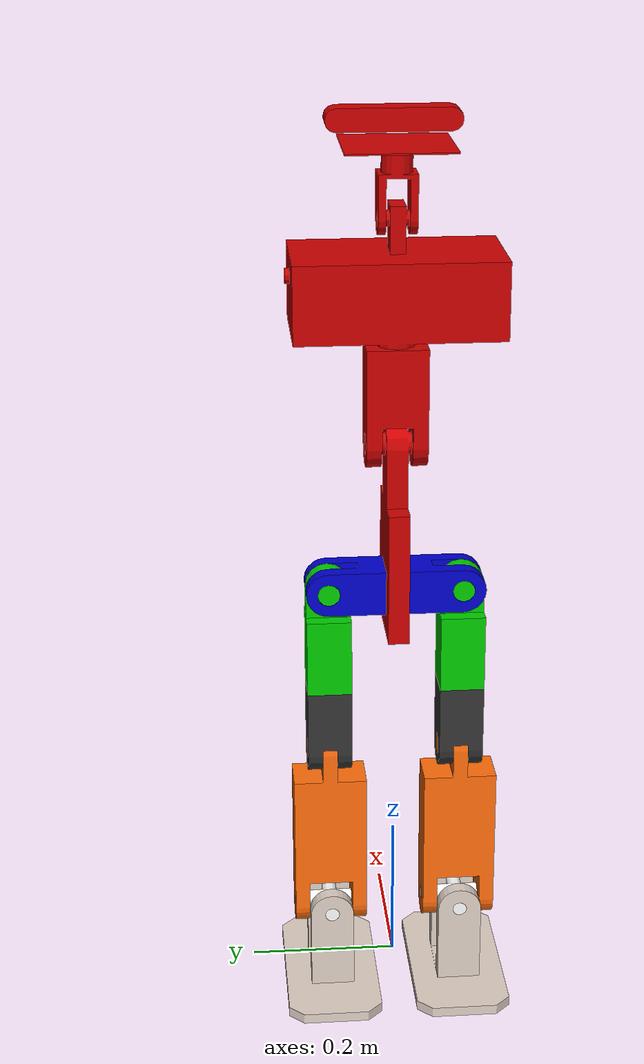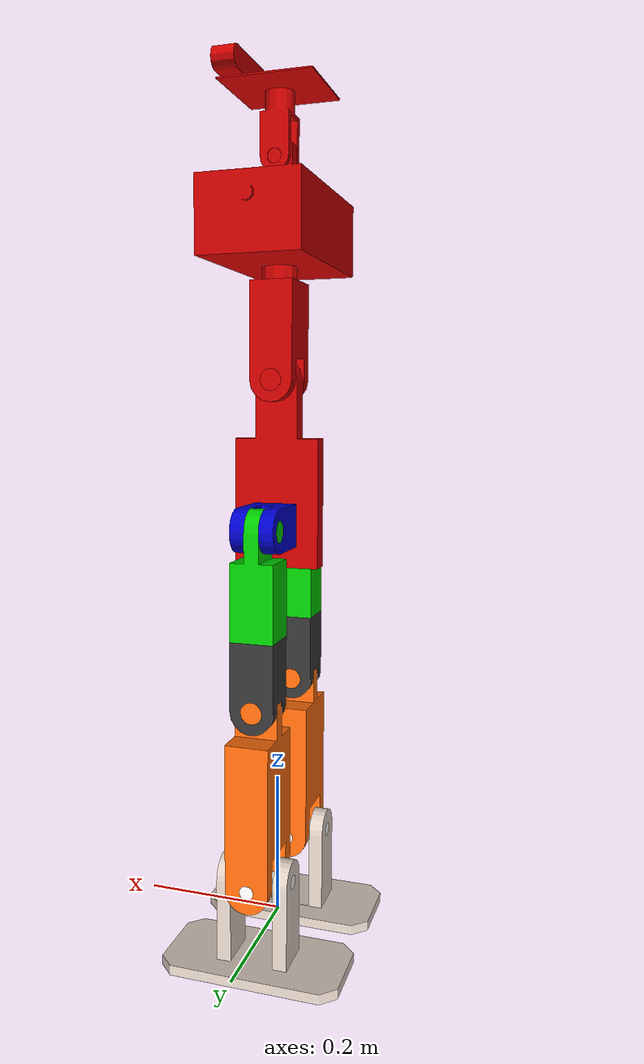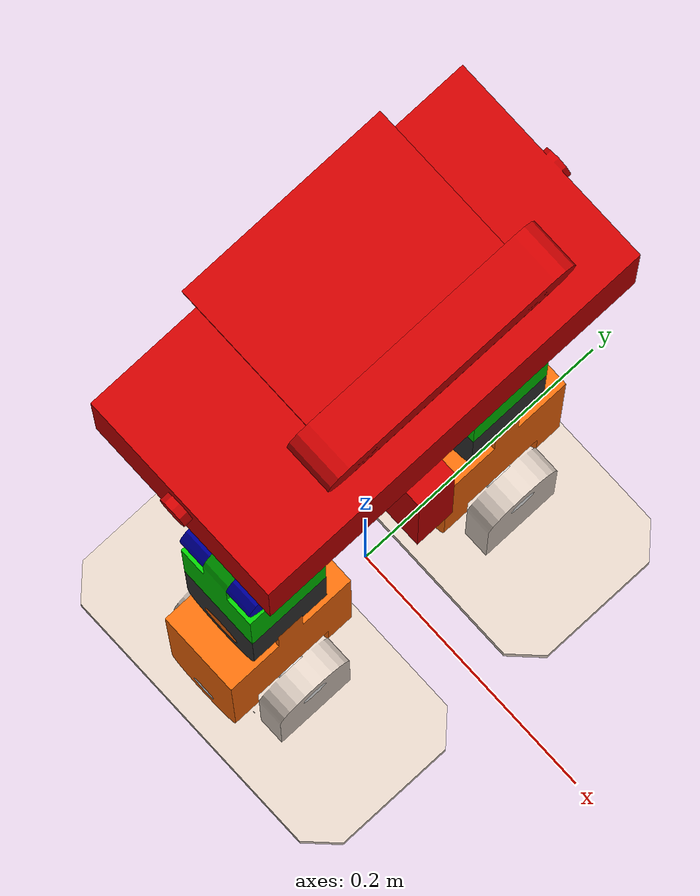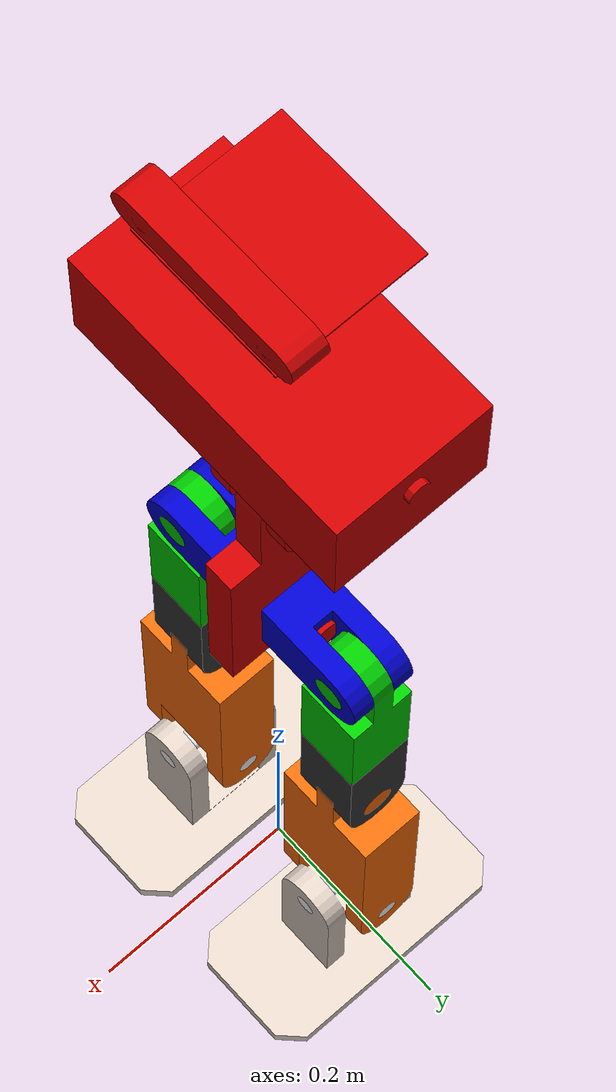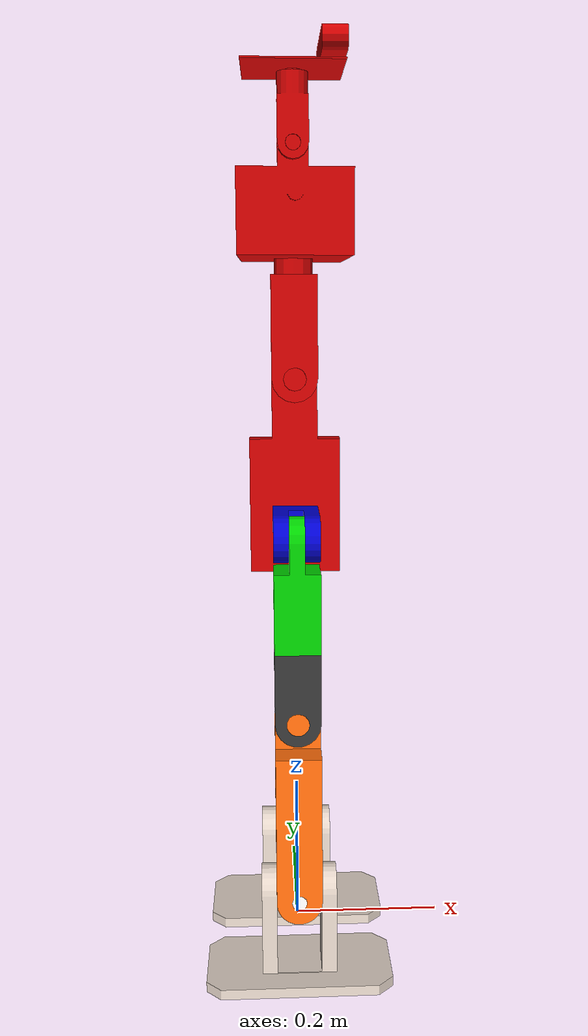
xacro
<?xml version="1.0"?>

<robot name="alice_robot" xmlns:xacro="http://www.ros.org/wiki/xacro">

  <xacro:property name="pi" value="3.141592654" />
   <!-- Import all Gazebo-customization elements, including Gazebo colors -->
  <xacro:include filename="$(find alice_description)/urdf/soccer_gazebo.gazebo" />
  <xacro:include filename="$(find alice_description)/urdf/materials.xacro" />

  <!-- Used for fixing robot -->

  <link name="base">
  </link>

  <joint name="base_fixed" type="fixed">
    <origin xyz="0 0 0.57" rpy="0 0 0"/>
    <parent link="base"/>
    <child link="pelvis"/>
  </joint>

  <!-- pelvis -->

  <link name="pelvis">
    <collision>
      <origin xyz="0 0 0" rpy="0 0 0"/>
      <geometry>
        <box size="0.01 0.01 0.01" />
      </geometry>
    </collision>

    <visual>
        <origin xyz="0 0 0" rpy="0 0 0"/>
        <geometry>
          <mesh filename="package://alice_description/meshes/prt_robot_pelvis_main.stl" scale="0.001 0.001 0.001"/>
        </geometry>
        <material name="red"/>
    </visual>

    <inertial>
      <origin xyz="0 0 0" rpy="0 0 0"/>
      <mass value="1"/>
      <inertia ixx="1.0" ixy="0.0" ixz="0.0" iyy="1.0" iyz="0.0" izz="1.0" />
    </inertial>
  </link>

  <joint name="imu_fixed" type="fixed">
    <parent link="pelvis"/>
    <child link="imu_link"/>
    <origin xyz="0.0 0.0 0" rpy="0 0 0"/>
  </joint>

  <link name="imu_link">
    <inertial>
      <origin xyz="0 0 0" rpy="0 0 0"/>
      <mass value="1"/>
      <inertia ixx="1.0" ixy="0.0" ixz="0.0" iyy="1.0" iyz="0.0" izz="1.0" />
    </inertial>
  </link>

  <!-- chest -->
  <joint name="waist_pitch" type="revolute">
    <parent link="pelvis"/>
    <child link="waist_pitch_link"/>
    <origin xyz="0 0 0.20" rpy="0 0 0"/>
    <axis xyz="0 -1 0"/>
    <limit velocity="6.5" effort="1000" lower="${-pi/2}" upper="${pi}" />
    <dynamics damping = "0.7"/>
  </joint>

  <transmission name="waist_pitch_tran">
     <type>transmission_interface/SimpleTransmission</type>
     <joint name="waist_pitch">
       <hardwareInterface>EffortJointInterface</hardwareInterface>
     </joint>
     <actuator name="waist_pitch_motor">
       <hardwareInterface>EffortJointInterface</hardwareInterface>
       <mechanicalReduction>1</mechanicalReduction>
     </actuator>
  </transmission>

  <link name="waist_pitch_link">
    <collision>
      <origin xyz="0 0 0" rpy="0 0 0"/>
      <geometry>
        <box size="0.01 0.01 0.01" />
      </geometry>
    </collision>

    <visual>
        <origin xyz="0 0 0" rpy="0 0 0"/>
        <geometry>
          <mesh filename="package://alice_description/meshes/prt_robot_chest_2.stl" scale="0.001 0.001 0.001"/>
        </geometry>
        <material name="red"/>
    </visual>

    <inertial>
      <origin xyz="0 0 0" rpy="0 0 0"/>
      <mass value="1"/>
      <inertia ixx="1.0" ixy="0.0" ixz="0.0" iyy="1.0" iyz="0.0" izz="1.0" />
    </inertial>
  </link>

  <joint name="waist_yaw" type="revolute">
    <parent link="waist_pitch_link"/>
    <child link="waist_yaw_link"/>
    <origin xyz="0 0 0.144" rpy="0 0 0"/>
    <axis xyz="0 0 -1"/>
    <limit velocity="6.5" effort="1000" lower="${-pi/2}" upper="${pi}" />
    <dynamics damping = "0.7"/>
   </joint>

  <transmission name="waist_yaw_tran">
     <type>transmission_interface/SimpleTransmission</type>
     <joint name="waist_yaw">
       <hardwareInterface>EffortJointInterface</hardwareInterface>
     </joint>
     <actuator name="waist_yaw_motor">
       <hardwareInterface>EffortJointInterface</hardwareInterface>
       <mechanicalReduction>1</mechanicalReduction>
     </actuator>
  </transmission>

  <link name="waist_yaw_link">
    <collision>
      <origin xyz="0 0 0" rpy="0 0 0"/>
      <geometry>
        <box size="0.01 0.01 0.01" />
      </geometry>
    </collision>

    <visual>
        <origin xyz="0 0 0" rpy="0 0 0"/>
        <geometry>
          <mesh filename="package://alice_description/meshes/prt_robot_chest_3.stl" scale="0.001 0.001 0.001"/>
        </geometry>
        <material name="red"/>
    </visual>

    <inertial>
      <origin xyz="0 0 0" rpy="0 0 0"/>
      <mass value="1"/>
      <inertia ixx="1.0" ixy="0.0" ixz="0.0" iyy="1.0" iyz="0.0" izz="1.0" />
    </inertial>
  </link>

<!-- HEAD -->

 <joint name="head_pitch" type="revolute">
    <parent link="waist_yaw_link"/>
    <child link="head_pitch_link"/>
    <origin xyz="0 0 0.151" rpy="0 0 0"/>
    <axis xyz="0 1 0"/>
    <limit velocity="6.5" effort="1000" lower="${-pi/2}" upper="${pi}" />
    <dynamics damping = "0.7"/>
   </joint>

  <transmission name="head_pitch_tran">
     <type>transmission_interface/SimpleTransmission</type>
     <joint name="head_pitch">
       <hardwareInterface>EffortJointInterface</hardwareInterface>
     </joint>
     <actuator name="head_pitch_motor">
       <hardwareInterface>EffortJointInterface</hardwareInterface>
       <mechanicalReduction>1</mechanicalReduction>
     </actuator>
  </transmission>

  <link name="head_pitch_link">
    <collision>
      <origin xyz="0 0 0" rpy="0 0 0"/>
      <geometry>
        <box size="0.01 0.01 0.01" />
      </geometry>
    </collision>

    <visual>
        <origin xyz="0 0 0" rpy="0 0 0"/>
        <geometry>
          <mesh filename="package://alice_description/meshes/prt_robot_head1.stl" scale="0.001 0.001 0.001"/>
        </geometry>
        <material name="red"/>
    </visual>

    <inertial>
      <origin xyz="0 0 0" rpy="0 0 0"/>
      <mass value="1"/>
      <inertia ixx="1.0" ixy="0.0" ixz="0.0" iyy="1.0" iyz="0.0" izz="1.0" />
    </inertial>
  </link>

 <joint name="head_yaw" type="revolute">
    <parent link="head_pitch_link"/>
    <child link="head_yaw_link"/>
    <origin xyz="0 0 0.0875" rpy="0 0 0"/>
    <axis xyz="0 0 1"/>
    <limit velocity="6.5" effort="1000" lower="${-pi/2}" upper="${pi}" />
    <dynamics damping = "0.7"/>
   </joint>

  <transmission name="head_yaw_tran">
     <type>transmission_interface/SimpleTransmission</type>
     <joint name="head_yaw">
       <hardwareInterface>EffortJointInterface</hardwareInterface>
     </joint>
     <actuator name="head_yaw_motor">
       <hardwareInterface>EffortJointInterface</hardwareInterface>
       <mechanicalReduction>1</mechanicalReduction>
     </actuator>
  </transmission>

  <link name="head_yaw_link">
    <collision>
      <origin xyz="0 0 0" rpy="0 0 0"/>
      <geometry>
        <box size="0.01 0.01 0.01" />
      </geometry>
    </collision>

    <visual>
        <origin xyz="0 0 0" rpy="0 0 0"/>
        <geometry>
          <mesh filename="package://alice_description/meshes/prt_robot_head2.stl" scale="0.001 0.001 0.001"/>
        </geometry>
        <material name="red"/>
    </visual>

    <inertial>
      <origin xyz="0 0 0" rpy="0 0 0"/>
      <mass value="1"/>
      <inertia ixx="1.0" ixy="0.0" ixz="0.0" iyy="1.0" iyz="0.0" izz="1.0" />
    </inertial>
  </link>

<joint name="camera_fixed" type="fixed">
    <parent link="head_yaw_link"/>
    <child link="camera_link"/>
    <origin xyz="0.05 0 0.027" rpy="0 0 0"/>
    <axis xyz="0 0 1"/>
    <limit velocity="6.5" effort="1000" lower="${-pi/2}" upper="${pi}" />
    <dynamics damping = "0.7"/>
 </joint>

  <link name="camera_link">
    <collision>
      <origin xyz="0 0 0" rpy="0 0 0"/>
      <geometry>
        <box size="0.01 0.01 0.01" />
      </geometry>
    </collision>

    <visual>
        <origin xyz="0 0 0" rpy="0 0 0"/>
        <geometry>
          <mesh filename="package://alice_description/meshes/prt_zed_camera_simul.stl" scale="0.001 0.001 0.001"/>
        </geometry>
        <material name="red"/>
    </visual>

    <inertial>
      <origin xyz="0 0 0" rpy="0 0 0"/>
      <mass value="1"/>
      <inertia ixx="1.0" ixy="0.0" ixz="0.0" iyy="1.0" iyz="0.0" izz="1.0" />
    </inertial>
  </link>

  <!-- left leg -->
  <joint name="l_hip_pitch" type="revolute">
    <parent link="pelvis"/>
    <child link="l_hip_pitch_link"/>
    <origin xyz="0 0.034 0" rpy="0 0 0"/>
    <axis xyz="0 -1 0"/>
    <limit velocity="6.5" effort="1000" lower="${-pi/2}" upper="${pi/2}" />
    <dynamics damping = "0.7"/>
  </joint>

  <transmission name="l_hip_pitch_tran">
     <type>transmission_interface/SimpleTransmission</type>
     <joint name="l_hip_pitch">
       <hardwareInterface>EffortJointInterface</hardwareInterface>
     </joint>
     <actuator name="l_hip_pitch_motor">
       <hardwareInterface>EffortJointInterface</hardwareInterface>
       <mechanicalReduction>1</mechanicalReduction>
     </actuator>
  </transmission>

  <link name="l_hip_pitch_link">
    <collision>
      <origin xyz="0 0 0" rpy="0 0 0"/>
      <geometry>
        <box size="0.01 0.01 0.01" />
      </geometry>
    </collision>

    <visual>
      <origin xyz="0 0 0" rpy="0 0 0"/>
      <geometry>
        <mesh filename="package://alice_description/meshes/prt_robot_pelvis_left1.stl" scale="0.001 0.001 0.001"/>
      </geometry>
      <material name="blue"/>
    </visual>

    <inertial>
      <origin xyz="0 0 0" rpy="0 0 0"/>
      <mass value="1"/>
      <inertia ixx="1.0" ixy="0.0" ixz="0.0" iyy="1.0" iyz="0.0" izz="1.0" />
    </inertial>
  </link>

  <joint name="l_hip_roll" type="revolute">
    <parent link="l_hip_pitch_link"/>
    <child link="l_hip_roll_link"/>
    <origin xyz="0 0.056 0" rpy="0 0 0"/>
    <axis xyz="-1 0 0"/>
    <limit velocity="6.5" effort="1000" lower="${-pi/2}" upper="${pi}" />
    <dynamics damping = "0.7"/>
  </joint>

  <transmission name="l_hip_roll_tran">
     <type>transmission_interface/SimpleTransmission</type>
     <joint name="l_hip_roll">
       <hardwareInterface>EffortJointInterface</hardwareInterface>
     </joint>
     <actuator name="l_hip_roll_motor">
       <hardwareInterface>EffortJointInterface</hardwareInterface>
       <mechanicalReduction>1</mechanicalReduction>
     </actuator>
  </transmission>

  <link name="l_hip_roll_link">
    <collision>
      <origin xyz="0 0 0" rpy="0 0 0"/>
      <geometry>
        <box size="0.01 0.01 0.01" />
      </geometry>
    </collision>

    <visual>
      <origin xyz="0 0 0" rpy="0 0 0"/>
      <geometry>
        <mesh filename="package://alice_description/meshes/prt_robot_pelvis_left2.stl" scale="0.001 0.001 0.001"/>
      </geometry>
      <material name="green"/>
    </visual>

    <inertial>
      <origin xyz="0 0 0" rpy="0 0 0"/>
      <mass value="1"/>
      <inertia ixx="1.0" ixy="0.0" ixz="0.0" iyy="1.0" iyz="0.0" izz="1.0" />
    </inertial>
  </link>

  <joint name="l_hip_yaw" type="revolute">
    <parent link="l_hip_roll_link"/>
    <child link="l_hip_yaw_link"/>
    <origin xyz="0 0 -0.136" rpy="0 0 0"/>
    <axis xyz="0 0 1"/>
    <limit velocity="6.5" effort="1000" lower="${-pi/2}" upper="${pi/2}" />
    <dynamics damping = "0.7"/>
  </joint>

  <transmission name="l_hip_yaw_tran">
     <type>transmission_interface/SimpleTransmission</type>
     <joint name="l_hip_yaw">
       <hardwareInterface>EffortJointInterface</hardwareInterface>
     </joint>
     <actuator name="l_hip_yaw_motor">
       <hardwareInterface>EffortJointInterface</hardwareInterface>
       <mechanicalReduction>1</mechanicalReduction>
     </actuator>
  </transmission>

  <link name="l_hip_yaw_link">
    <collision>
      <origin xyz="0 0 0" rpy="0 0 0"/>
      <geometry>
        <box size="0.01 0.01 0.01" />
      </geometry>
    </collision>

    <visual>
      <origin xyz="0 0 0" rpy="0 0 0"/>
      <geometry>
        <mesh filename="package://alice_description/meshes/prt_robot_leg_left1.stl" scale="0.001 0.001 0.001"/>
      </geometry>
      <material name="grey"/>
    </visual>

    <inertial>
      <origin xyz="0 0 0" rpy="0 0 0"/>
      <mass value="1"/>
      <inertia ixx="1.0" ixy="0.0" ixz="0.0" iyy="1.0" iyz="0.0" izz="1.0" />
    </inertial>
  </link>

  <joint name="l_knee_pitch" type="revolute">
    <parent link="l_hip_yaw_link"/>
    <child link="l_knee_pitch_link"/>
    <origin xyz="0 0 -0.104" rpy="0 0 0"/>
    <axis xyz="0 -1 0"/>
    <limit velocity="6.5" effort="1000" lower="${-pi}" upper="${pi/2}" />
    <dynamics damping = "0.7"/>
  </joint>

  <transmission name="l_knee_pitch_tran">
     <type>transmission_interface/SimpleTransmission</type>
     <joint name="l_knee_pitch">
       <hardwareInterface>EffortJointInterface</hardwareInterface>
     </joint>
     <actuator name="l_knee_pitch_motor">
       <hardwareInterface>EffortJointInterface</hardwareInterface>
       <mechanicalReduction>1</mechanicalReduction>
     </actuator>
  </transmission>

  <link name="l_knee_pitch_link">
    <collision>
      <origin xyz="0 0 0" rpy="0 0 0"/>
      <geometry>
        <box size="0.01 0.01 0.01" />
      </geometry>
    </collision>

    <visual>
      <origin xyz="0 0 0" rpy="0 0 0"/>
      <geometry>
        <mesh filename="package://alice_description/meshes/prt_robot_leg_left2.stl" scale="0.001 0.001 0.001"/>
      </geometry>
      <material name="orange"/>
    </visual>

    <inertial>
      <origin xyz="0 0 -0.240" rpy="0 0 0"/>
      <mass value="1"/>
      <inertia ixx="1.0" ixy="0.0" ixz="0.0" iyy="1.0" iyz="0.0" izz="1.0" />
    </inertial>
  </link>

  <joint name="l_ankle_pitch" type="revolute">
    <parent link="l_knee_pitch_link"/>
    <child link="l_ankle_pitch_link"/>
    <origin xyz="0 0 -0.240" rpy="0 0 0"/>
    <axis xyz="0 1 0"/>
    <limit velocity="6.5" effort="1000" lower="${-pi/2}" upper="${pi}" />
    <dynamics damping = "0.7"/>
  </joint>

  <transmission name="l_ankle_pitch_tran">
     <type>transmission_interface/SimpleTransmission</type>
     <joint name="l_ankle_pitch">
       <hardwareInterface>EffortJointInterface</hardwareInterface>
     </joint>
     <actuator name="l_ankle_pitch_motor">
       <hardwareInterface>EffortJointInterface</hardwareInterface>
       <mechanicalReduction>1</mechanicalReduction>
     </actuator>
  </transmission>

  <link name="l_ankle_pitch_link">
    <collision>
      <origin xyz="0 0 0" rpy="0 0 0"/>
      <geometry>
        <box size="0.01 0.01 0.01" />
      </geometry>
    </collision>

    <visual>
      <origin xyz="0 0 0" rpy="0 0 0"/>
      <geometry>
        <mesh filename="package://alice_description/meshes/prt_robot_ank_left1.stl" scale="0.001 0.001 0.001"/>
      </geometry>
      <material name="white"/>
    </visual>

    <inertial>
      <origin xyz="0 0 0" rpy="0 0 0"/>
      <mass value="1"/>
      <inertia ixx="1.0" ixy="0.0" ixz="0.0" iyy="1.0" iyz="0.0" izz="1.0" />
    </inertial>
  </link>

  <joint name="l_ankle_roll" type="revolute">
    <parent link="l_ankle_pitch_link"/>
    <child link="l_ankle_roll_link"/>
    <origin xyz="0 0 0" rpy="0 0 0"/>
    <axis xyz="1 0 0"/>
    <limit velocity="6.5" effort="1000" lower="${-pi/2}" upper="${pi/2}" />
    <dynamics damping = "0.7"/>
  </joint>

  <transmission name="l_ankle_roll_tran">
     <type>transmission_interface/SimpleTransmission</type>
     <joint name="l_ankle_roll">
       <hardwareInterface>EffortJointInterface</hardwareInterface>
     </joint>
     <actuator name="l_ankle_roll_motor">
       <hardwareInterface>EffortJointInterface</hardwareInterface>
       <mechanicalReduction>1</mechanicalReduction>
     </actuator>
  </transmission>

  <link name="l_ankle_roll_link">
    <collision>
      <origin xyz="0 0 0" rpy="0 0 0"/>
      <geometry>
        <box size="0.01 0.01 0.01" />
      </geometry>
    </collision>

    <visual>
      <origin xyz="0 0 0" rpy="0 0 0"/>
      <geometry>
        <mesh filename="package://alice_description/meshes/prt_robot_ank_left2.stl" scale="0.001 0.001 0.001"/>
      </geometry>
      <material name="brown"/>
    </visual>

    <inertial>
      <origin xyz="0 0 0" rpy="0 0 0"/>
      <mass value="1"/>
      <inertia ixx="1.0" ixy="0.0" ixz="0.0" iyy="1.0" iyz="0.0" izz="1.0" />
    </inertial>
  </link>

  <joint name="l_last" type="fixed">
    <parent link="l_ankle_roll_link"/>
    <child link="l_foot_link"/>
    <origin xyz="0 0 -0.1245" rpy="0 0 0"/>
  </joint>

  <link name="l_foot_link">
    <collision>
      <origin xyz="0 0 0" rpy="0 0 0"/>
      <geometry>
        <box size="0.25 0.13 0.005" />
      </geometry>
    </collision>

    <inertial>
      <origin xyz="0 0 0" rpy="0 0 0"/>
      <mass value="1"/>
      <inertia ixx="1.0" ixy="0.0" ixz="0.0" iyy="1.0" iyz="0.0" izz="1.0" />
    </inertial>
  </link>

  <!-- right leg -->
  <joint name="r_hip_pitch" type="revolute">
    <parent link="pelvis"/>
    <child link="r_hip_pitch_link"/>
    <origin xyz="0 -0.034 0" rpy="0 0 0"/>
    <axis xyz="0 1 0"/>
    <limit velocity="6.5" effort="1000" lower="${-pi/2}" upper="${pi}" />
    <dynamics damping = "0.7"/>
  </joint>

  <transmission name="r_hip_pitch_tran">
     <type>transmission_interface/SimpleTransmission</type>
     <joint name="r_hip_pitch">
       <hardwareInterface>EffortJointInterface</hardwareInterface>
     </joint>
     <actuator name="r_hip_pitch_motor">
       <hardwareInterface>EffortJointInterface</hardwareInterface>
       <mechanicalReduction>1</mechanicalReduction>
     </actuator>
  </transmission>

  <link name="r_hip_pitch_link">
    <collision>
      <origin xyz="0 0 0" rpy="0 0 0"/>
      <geometry>
        <box size="0.01 0.01 0.01" />
      </geometry>
    </collision>

    <visual>
      <origin xyz="0 0 0" rpy="0 0 0"/>
      <geometry>
        <mesh filename="package://alice_description/meshes/prt_robot_pelvis_right1.stl" scale="0.001 0.001 0.001"/>
      </geometry>
      <material name="blue"/>
    </visual>

    <inertial>
      <origin xyz="0 0 0" rpy="0 0 0"/>
      <mass value="1"/>
      <inertia ixx="1.0" ixy="0.0" ixz="0.0" iyy="1.0" iyz="0.0" izz="1.0" />
    </inertial>
  </link>

  <joint name="r_hip_roll" type="revolute">
    <parent link="r_hip_pitch_link"/>
    <child link="r_hip_roll_link"/>
    <origin xyz="0 -0.056 0" rpy="0 0 0"/>
    <axis xyz="-1 0 0"/>
    <limit velocity="6.5" effort="1000" lower="${-pi}" upper="${pi/2}" />
    <dynamics damping = "0.7"/>
  </joint>

  <transmission name="r_hip_roll_tran">
     <type>transmission_interface/SimpleTransmission</type>
     <joint name="r_hip_roll">
       <hardwareInterface>EffortJointInterface</hardwareInterface>
     </joint>
     <actuator name="r_hip_roll_motor">
       <hardwareInterface>EffortJointInterface</hardwareInterface>
       <mechanicalReduction>1</mechanicalReduction>
     </actuator>
  </transmission>

  <link name="r_hip_roll_link">
    <collision>
      <origin xyz="0 0 0" rpy="0 0 0"/>
      <geometry>
        <box size="0.01 0.01 0.01" />
      </geometry>
    </collision>

    <visual>
      <origin xyz="0 0 0" rpy="0 0 0"/>
      <geometry>
        <mesh filename="package://alice_description/meshes/prt_robot_pelvis_right2.stl" scale="0.001 0.001 0.001"/>
      </geometry>
      <material name="green"/>
    </visual>

    <inertial>
      <origin xyz="0 0 0" rpy="0 0 0"/>
      <mass value="1"/>
      <inertia ixx="1.0" ixy="0.0" ixz="0.0" iyy="1.0" iyz="0.0" izz="1.0" />
    </inertial>
  </link>

  <joint name="r_hip_yaw" type="revolute">
    <parent link="r_hip_roll_link"/>
    <child link="r_hip_yaw_link"/>
    <origin xyz="0 0 -0.136" rpy="0 0 0"/>
    <axis xyz="0 0 1"/>
    <limit velocity="6.5" effort="1000" lower="${-pi/2}" upper="${pi/2}" />
    <dynamics damping = "0.7"/>
  </joint>

  <transmission name="r_hip_yaw_tran">
     <type>transmission_interface/SimpleTransmission</type>
     <joint name="r_hip_yaw">
       <hardwareInterface>EffortJointInterface</hardwareInterface>
     </joint>
     <actuator name="r_hip_yaw_motor">
       <hardwareInterface>EffortJointInterface</hardwareInterface>
       <mechanicalReduction>1</mechanicalReduction>
     </actuator>
  </transmission>

  <link name="r_hip_yaw_link">
   <collision>
      <origin xyz="0 0 0" rpy="0 0 0"/>
      <geometry>
        <box size="0.01 0.01 0.01" />
      </geometry>
    </collision>

    <visual>
      <origin xyz="0 0 0" rpy="0 0 0"/>
      <geometry>
        <mesh filename="package://alice_description/meshes/prt_robot_leg_right1.stl" scale="0.001 0.001 0.001"/>
      </geometry>
      <material name="grey"/>
    </visual>

    <inertial>
      <origin xyz="0 0 0" rpy="0 0 0"/>
      <mass value="1"/>
      <inertia ixx="1.0" ixy="0.0" ixz="0.0" iyy="1.0" iyz="0.0" izz="1.0" />
    </inertial>
  </link>

  <joint name="r_knee_pitch" type="revolute">
    <parent link="r_hip_yaw_link"/>
    <child link="r_knee_pitch_link"/>
    <origin xyz="0 0 -0.104" rpy="0 0 0"/>
    <axis xyz="0 1 0"/>
    <limit velocity="6.5" effort="1000" lower="${-pi/2}" upper="${pi}" />
    <dynamics damping = "0.7"/>
  </joint>

  <transmission name="r_knee_pitch_tran">
     <type>transmission_interface/SimpleTransmission</type>
     <joint name="r_knee_pitch">
       <hardwareInterface>EffortJointInterface</hardwareInterface>
     </joint>
     <actuator name="r_knee_pitch_motor">
       <hardwareInterface>EffortJointInterface</hardwareInterface>
       <mechanicalReduction>1</mechanicalReduction>
     </actuator>
  </transmission>

  <link name="r_knee_pitch_link">
    <collision>
      <origin xyz="0 0 0" rpy="0 0 0"/>
      <geometry>
        <box size="0.01 0.01 0.01" />
      </geometry>
    </collision>

    <visual>
      <origin xyz="0 0 0" rpy="0 0 0"/>
      <geometry>
        <mesh filename="package://alice_description/meshes/prt_robot_leg_right2.stl" scale="0.001 0.001 0.001"/>
      </geometry>
      <material name="orange"/>
    </visual>

    <inertial>
      <origin xyz="0 0 0" rpy="0 0 0"/>
      <mass value="1"/>
      <inertia ixx="1.0" ixy="0.0" ixz="0.0" iyy="1.0" iyz="0.0" izz="1.0" />
    </inertial>
  </link>

  <joint name="r_ankle_pitch" type="revolute">
    <parent link="r_knee_pitch_link"/>
    <child link="r_ankle_pitch_link"/>
    <origin xyz="0 0 -0.240" rpy="0 0 0"/>
    <axis xyz="0 -1 0"/>
    <limit velocity="6.5" effort="1000" lower="${-pi/2}" upper="${pi/2}" />
    <dynamics damping = "0.7"/>
  </joint>

  <transmission name="r_ankle_pitch_tran">
     <type>transmission_interface/SimpleTransmission</type>
     <joint name="r_ankle_pitch">
       <hardwareInterface>EffortJointInterface</hardwareInterface>
     </joint>
     <actuator name="r_ankle_pitch_motor">
       <hardwareInterface>EffortJointInterface</hardwareInterface>
       <mechanicalReduction>1</mechanicalReduction>
     </actuator>
  </transmission>

  <link name="r_ankle_pitch_link">
    <collision>
      <origin xyz="0 0 0" rpy="0 0 0"/>
      <geometry>
        <box size="0.01 0.01 0.01" />
      </geometry>
    </collision>

    <visual>
      <origin xyz="0 0 0" rpy="0 0 0"/>
      <geometry>
        <mesh filename="package://alice_description/meshes/prt_robot_ank_right1.stl" scale="0.001 0.001 0.001"/>
      </geometry>
      <material name="white"/>
    </visual>

    <inertial>
      <origin xyz="0 0 0" rpy="0 0 0"/>
      <mass value="1"/>
      <inertia ixx="1.0" ixy="0.0" ixz="0.0" iyy="1.0" iyz="0.0" izz="1.0" />
    </inertial>
  </link>

  <joint name="r_ankle_roll" type="revolute">
    <parent link="r_ankle_pitch_link"/>
    <child link="r_ankle_roll_link"/>
    <origin xyz="0 0 0" rpy="0 0 0"/>
    <axis xyz="1 0 0"/>
    <limit velocity="6.5" effort="1000" lower="${-pi/2}" upper="${pi/2}" />
    <dynamics damping = "0.7"/>
  </joint>

  <transmission name="r_ankle_roll_tran">
     <type>transmission_interface/SimpleTransmission</type>
     <joint name="r_ankle_roll">
       <hardwareInterface>EffortJointInterface</hardwareInterface>
     </joint>
     <actuator name="r_ankle_roll_motor">
       <hardwareInterface>EffortJointInterface</hardwareInterface>
       <mechanicalReduction>1</mechanicalReduction>
     </actuator>
  </transmission>

  <link name="r_ankle_roll_link">
    <collision>
      <origin xyz="0 0 0" rpy="0 0 0"/>
      <geometry>
        <box size="0.01 0.01 0.01" />
      </geometry>
    </collision>

    <visual>
      <origin xyz="0 0 0" rpy="0 0 0"/>
      <geometry>
        <mesh filename="package://alice_description/meshes/prt_robot_ank_right2.stl" scale="0.001 0.001 0.001"/>
      </geometry>
      <material name="brown"/>
    </visual>

    <inertial>
      <origin xyz="0 0 0" rpy="0 0 0"/>
      <mass value="1"/>
      <inertia ixx="1.0" ixy="0.0" ixz="0.0" iyy="1.0" iyz="0.0" izz="1.0" />
    </inertial>
  </link>

  <joint name="r_last" type="fixed">
    <parent link="r_ankle_roll_link"/>
    <child link="r_foot_link"/>
    <origin xyz="0 0 -0.1245" rpy="0 0 0"/>
  </joint>

  <link name="r_foot_link">
    <collision>
      <origin xyz="0 0 0" rpy="0 0 0"/>
      <geometry>
        <box size="0.25 0.13 0.005" />
      </geometry>
    </collision>

    <inertial>
      <origin xyz="0 0 0" rpy="0 0 0"/>
      <mass value="1"/>
      <inertia ixx="1.0" ixy="0.0" ixz="0.0" iyy="1.0" iyz="0.0" izz="1.0" />
    </inertial>
  </link>

</robot>

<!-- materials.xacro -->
<robot>

  <material name="red">
    <color rgba="0.8 0.0 0.0 1.0"/>
  </material>

   <material name="blue">
    <color rgba="0.0 0.0 0.8 1.0"/>
  </material>

  <material name="green">
    <color rgba="0.0 0.8 0.0 1.0"/>
  </material>

  <material name="grey">
    <color rgba="0.2 0.2 0.2 1.0"/>
  </material>

  <material name="orange">
    <color rgba="${255/255} ${108/255} ${10/255} 1.0"/>
  </material>

  <material name="brown">
    <color rgba="${222/255} ${207/255} ${195/255} 1.0"/>
  </material>

  <material name="white">
    <color rgba="1.0 1.0 1.0 1.0"/>
  </material>

</robot>
